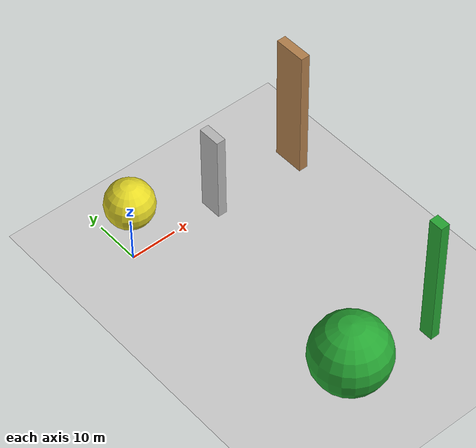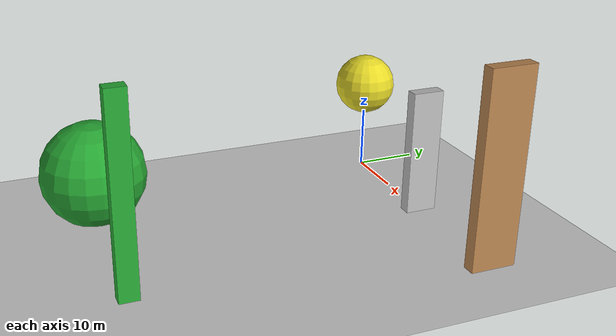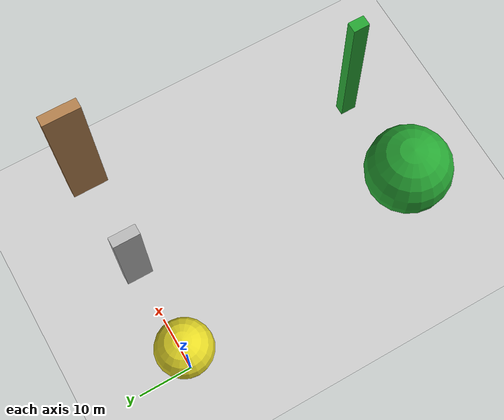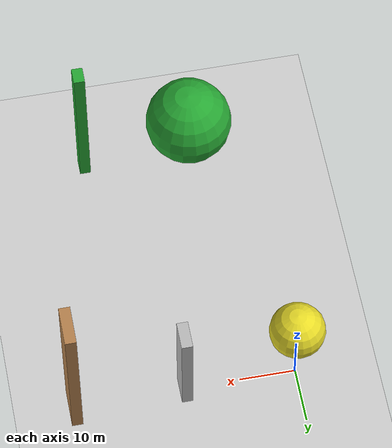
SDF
<sdf version="1.6">
 <world name="default">
  <scene>
   <ambient>0.4 0.4 0.4 1</ambient>
   <background>0.52 0.80 0.92 1</background>
   <shadows>false</shadows>
  </scene>
  <light type="directional" name="some_light">
   <diffuse>0.7 0.7 0.7 0</diffuse>
   <specular>1 1 1 0</specular>
   <direction>0 -1 -1</direction>
  </light>
  <model name="ground_plane">
   <static>1</static>
   <link name="link">
    <collision name="collision">
     <geometry><plane><normal>0 0 1</normal><size>100 100</size></plane></geometry>
     <surface>
      <contact><collide_bitmask>65535</collide_bitmask></contact>
      <friction><ode><mu>100</mu><mu2>50</mu2></ode></friction>
     </surface>
    </collision>
    <visual name="visual">
     <cast_shadows>0</cast_shadows>
     <geometry><plane><normal>0 0 1</normal><size>500 500</size></plane></geometry>
     <material><script><uri>model://materials/ground_plain.material</uri><name>Tarmac</name></script></material>
    </visual>
   </link>
  </model>
  <model name="obstacles">
   <static>1</static>
   <link name="link">
    <pose>20 0 10 0 0 0</pose>
    <inertial>
     <mass>1.0</mass>
     <inertia><ixx>0.083</ixx><ixy>0.0</ixy><ixz>0.0</ixz><iyy>0.083</iyy><iyz>0.0</iyz><izz>0.083</izz></inertia>
    </inertial>
    <visual name="visual">
     <geometry><box><size>2 5 20</size></box></geometry>
     <material><script><uri>model://materials/texture.material</uri><name>Concrete</name></script></material>
    </visual>
   </link>
   <link name="link1">
    <pose>30 -50 15 0 0 0</pose>
    <inertial>
     <mass>1.0</mass>
     <inertia><ixx>0.083</ixx><ixy>0.0</ixy><ixz>0.0</ixz><iyy>0.083</iyy><iyz>0.0</iyz><izz>0.083</izz></inertia>
    </inertial>
    <visual name="visual">
     <geometry><box><size>2 3 30</size></box></geometry>
     <material><script><uri>model://materials/texture.material</uri><name>Green</name></script></material>
    </visual>
   </link>
   <link name="link2">
    <pose>40 0 15 0 0 0</pose>
    <inertial>
     <mass>1.0</mass>
     <inertia><ixx>0.083</ixx><ixy>0.0</ixy><ixz>0.0</ixz><iyy>0.083</iyy><iyz>0.0</iyz><izz>0.083</izz></inertia>
    </inertial>
    <visual name="visual">
     <geometry><box><size>2 7 30</size></box></geometry>
     <material><script><uri>model://materials/texture.material</uri><name>Wood</name></script></material>
    </visual>
   </link>
   <link name="link3">
    <pose>0 0 15 0 0 0</pose>
    <inertial>
     <mass>1.0</mass>
     <inertia><ixx>0.083</ixx><ixy>0.0</ixy><ixz>0.0</ixz><iyy>0.083</iyy><iyz>0.0</iyz><izz>0.083</izz></inertia>
    </inertial>
    <visual name="visual">
     <geometry><sphere><radius>5</radius></sphere></geometry>
     <material>
      <script><uri>file://media/materials/scripts/gazebo.material</uri><name>Gazebo/Yellow</name></script>
     </material>
    </visual>
   </link>
   <link name="link4">
    <pose>10 -50 10 0 0 0</pose>
    <inertial>
     <mass>1.0</mass>
     <inertia><ixx>0.083</ixx><ixy>0.0</ixy><ixz>0.0</ixz><iyy>0.083</iyy><iyz>0.0</iyz><izz>0.083</izz></inertia>
    </inertial>
    <visual name="visual">
     <geometry><sphere><radius>8</radius></sphere></geometry>
     <material>
      <script><uri>file://media/materials/scripts/gazebo.material</uri><name>Gazebo/Green</name></script>
     </material>
    </visual>
   </link>
  </model>
  <gravity>0 0 -9.8</gravity>
  <magnetic_field>6e-06 2.3e-05 -4.2e-05</magnetic_field>
  <atmosphere type="adiabatic"/>
  <physics name="default_physics" default="0" type="ode">
   <max_step_size>0.001</max_step_size>
   <real_time_factor>1</real_time_factor>
   <real_time_update_rate>1000</real_time_update_rate>
  </physics>
  <scene><ambient>0.4 0.4 0.4 1</ambient><background>0.7 0.7 0.7 1</background><shadows>0</shadows></scene>
  <spherical_coordinates>
   <surface_model>EARTH_WGS84</surface_model>
   <latitude_deg>0</latitude_deg>
   <longitude_deg>0</longitude_deg>
   <elevation>0</elevation>
   <heading_deg>0</heading_deg>
  </spherical_coordinates>
 </world>
</sdf>
